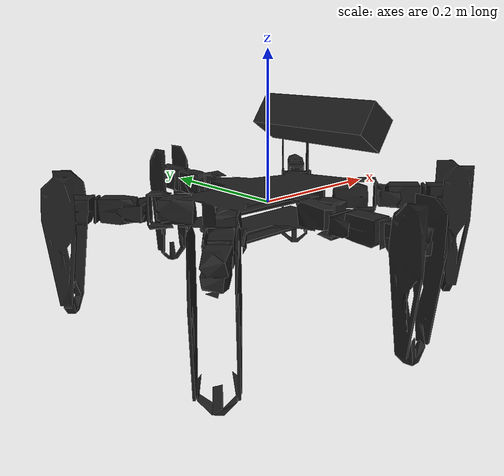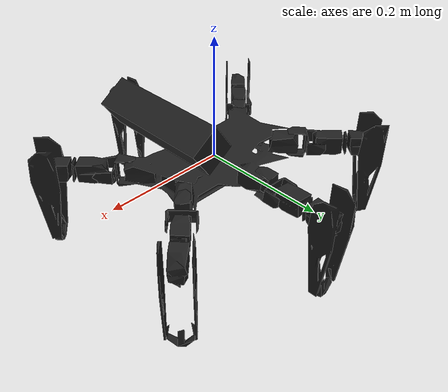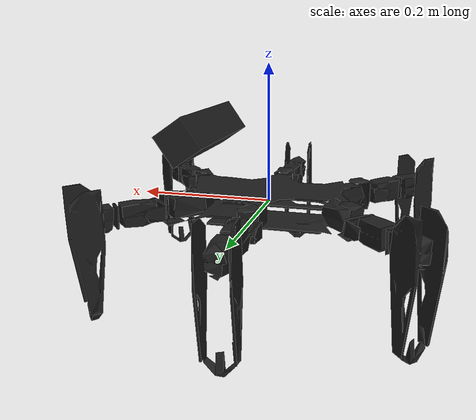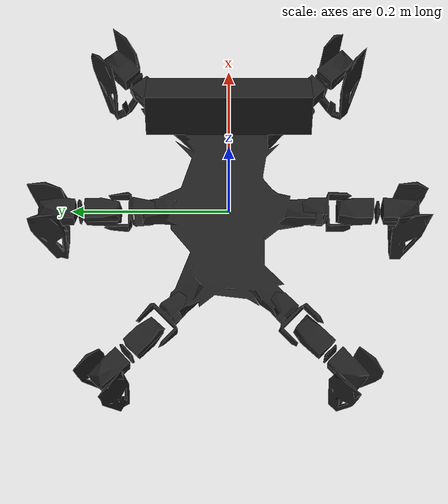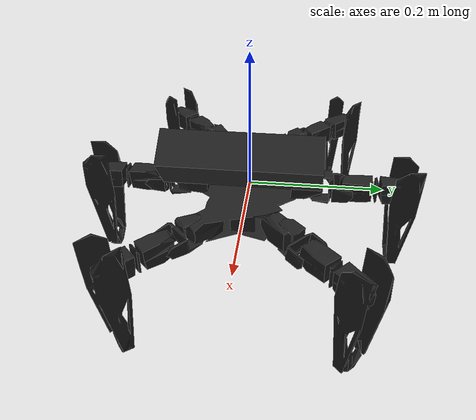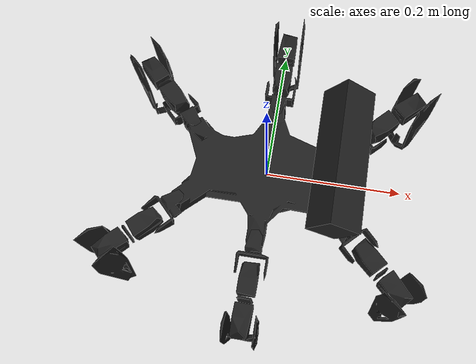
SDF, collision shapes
<sdf version='1.6'>
  <model name='phantomx'>
    <link name='root_link'>
      <pose frame=''>0 0 0 0 -0 0</pose>
      <inertial>
        <pose frame=''>0.009297 0 0.009297 0 -0 0</pose>
        <mass>1.0756</mass>
        <inertia>
          <ixx>3.11009</ixx>
          <ixy>-0.254602</ixy>
          <ixz>2.03091</ixz>
          <iyy>6.38159</iyy>
          <iyz>0.164179</iyz>
          <izz>5.33355</izz>
        </inertia>
      </inertial>
      <collision name='root_link_fixed_joint_lump__base_link_collision'>
        <pose frame=''>0 0 0 0 -0 0</pose>
        <geometry>
          <mesh>
            <scale>1 1 1</scale>
            <uri>model://phantomx_description/meshes/base_link_simple.stl</uri>
          </mesh>
        </geometry>
        <surface>
          <contact>
            <ode/>
          </contact>
          <friction>
            <ode/>
          </friction>
        </surface>
      </collision>
      <collision name='root_link_fixed_joint_lump__kinect_link_collision_1'>
        <pose frame=''>0.1 0 0.1 0 0.6 0</pose>
        <geometry>
          <box>
            <size>0.05 0.2 0.05</size>
          </box>
        </geometry>
        <surface>
          <contact>
            <ode/>
          </contact>
          <friction>
            <ode/>
          </friction>
        </surface>
      </collision>
      <visual name='root_link_fixed_joint_lump__base_link_visual'>
        <pose frame=''>0 0 0 0 -0 0</pose>
        <geometry>
          <mesh>
            <scale>1 1 1</scale>
            <uri>model://phantomx_description/meshes/base_link.stl</uri>
          </mesh>
        </geometry>
        <material>
          <script>
            <name>Gazebo/Black</name>
            <uri>file://media/materials/scripts/gazebo.material</uri>
          </script>
        </material>
      </visual>
      <visual name='root_link_fixed_joint_lump__kinect_link_visual_1'>
        <pose frame=''>0.1 0 0.1 0 0.6 0</pose>
        <geometry>
          <box>
            <size>0.05 0.2 0.05</size>
          </box>
        </geometry>
        <material>
          <script>
            <uri>__default__</uri>
            <name>__default__</name>
          </script>
        </material>
      </visual>
      <velocity_decay/>
      <gravity>1</gravity>
      <velocity_decay/>
      <sensor name='camera_1' type='depth'>
        <always_on>1</always_on>
        <visualize>1</visualize>
        <camera name='__default__'>
          <horizontal_fov>1.047</horizontal_fov>
          <image>
            <width>640</width>
            <height>480</height>
            <format>R8G8B8</format>
          </image>
          <depth_camera>
            <output>depths</output>
          </depth_camera>
          <clip>
            <near>0.1</near>
            <far>100</far>
          </clip>
        </camera>
        <plugin name='camera_controller' filename='libgazebo_ros_openni_kinect.so'>
          <alwaysOn>true</alwaysOn>
          <updateRate>10.0</updateRate>
          <cameraName>kinect</cameraName>
          <frameName>camera_link_optical</frameName>
          <imageTopicName>rgb/image_raw</imageTopicName>
          <depthImageTopicName>depth/image_raw</depthImageTopicName>
          <pointCloudTopicName>depth/points</pointCloudTopicName>
          <cameraInfoTopicName>rgb/camera_info</cameraInfoTopicName>
          <depthImageCameraInfoTopicName>depht/camera_info</depthImageCameraInfoTopicName>
          <pointCloudCutoff>0.4</pointCloudCutoff>
          <hackBaseline>0.07</hackBaseline>
          <distortionK1>0.0</distortionK1>
          <distortionK2>0.0</distortionK2>
          <distortionK3>0.0</distortionK3>
          <distortionT1>0.0</distortionT1>
          <distortionT2>0.0</distortionT2>
          <CxPrime>0.0</CxPrime>
          <Cx>0.0</Cx>
          <Cy>0.0</Cy>
          <focalLength>0.0</focalLength>
        </plugin>
        <pose frame=''>0.1 0 0.1 0 0.6 0</pose>
      </sensor>
    </link>
    <link name='AL_coxa_link'>
      <pose frame=''>0.12 0.06 0 0 -0 0.785398</pose>
      <inertial>
        <pose frame=''>0.024002 0 0 0 -0 0</pose>
        <mass>0.0109641</mass>
        <inertia>
          <ixx>0.01</ixx>
          <ixy>0</ixy>
          <ixz>0</ixz>
          <iyy>0.01</iyy>
          <iyz>0</iyz>
          <izz>0.01</izz>
        </inertia>
      </inertial>
      <collision name='AL_coxa_link_collision'>
        <pose frame=''>0 0 0 0 -0 0</pose>
        <geometry>
          <mesh>
            <scale>1 1 1</scale>
            <uri>model://phantomx_description/meshes/coxa_link_simple.STL</uri>
          </mesh>
        </geometry>
        <surface>
          <contact>
            <ode>
              <kp>100</kp>
              <kd>10</kd>
            </ode>
          </contact>
          <friction>
            <ode>
              <mu>0.8</mu>
              <mu2>0.6</mu2>
            </ode>
          </friction>
        </surface>
      </collision>
      <visual name='AL_coxa_link_visual'>
        <pose frame=''>0 0 0 0 -0 0</pose>
        <geometry>
          <mesh>
            <scale>1 1 1</scale>
            <uri>model://phantomx_description/meshes/coxa_link.STL</uri>
          </mesh>
        </geometry>
        <material>
          <script>
            <name>Gazebo/Black</name>
            <uri>file://media/materials/scripts/gazebo.material</uri>
          </script>
        </material>
      </visual>
      <gravity>1</gravity>
      <velocity_decay/>
      <gravity>1</gravity>
    </link>
    <joint name='AL_coxa_joint' type='revolute'>
      <child>AL_coxa_link</child>
      <parent>root_link</parent>
      <axis>
        <xyz>0 0 1</xyz>
        <limit>
          <lower>-3.14</lower>
          <upper>3.14</upper>
          <effort>1000</effort>
          <velocity>1</velocity>
        </limit>
        <dynamics>
          <damping>1.5</damping>
          <friction>1.5</friction>
          <spring_reference>0</spring_reference>
          <spring_stiffness>0</spring_stiffness>
        </dynamics>
        <use_parent_model_frame>1</use_parent_model_frame>
      </axis>
    </joint>
    <link name='AL_femur_link'>
      <pose frame=''>0.153941 0.093941 0 1.5707 -0 0.785398</pose>
      <inertial>
        <pose frame=''>0.042083 1e-06 -0.000981 0 -0 0</pose>
        <mass>0.121477</mass>
        <inertia>
          <ixx>0.01</ixx>
          <ixy>0</ixy>
          <ixz>0</ixz>
          <iyy>0.01</iyy>
          <iyz>0</iyz>
          <izz>0.01</izz>
        </inertia>
      </inertial>
      <collision name='AL_femur_link_collision'>
        <pose frame=''>0 0 0 0 -0 0</pose>
        <geometry>
          <mesh>
            <scale>1 1 1</scale>
            <uri>model://phantomx_description/meshes/femur_link_simple.STL</uri>
          </mesh>
        </geometry>
        <surface>
          <contact>
            <ode>
              <kp>100</kp>
              <kd>10</kd>
            </ode>
          </contact>
          <friction>
            <ode>
              <mu>0.8</mu>
              <mu2>0.6</mu2>
            </ode>
          </friction>
        </surface>
      </collision>
      <visual name='AL_femur_link_visual'>
        <pose frame=''>0 0 0 0 -0 0</pose>
        <geometry>
          <mesh>
            <scale>1 1 1</scale>
            <uri>model://phantomx_description/meshes/femur_link.STL</uri>
          </mesh>
        </geometry>
        <material>
          <script>
            <name>Gazebo/Black</name>
            <uri>file://media/materials/scripts/gazebo.material</uri>
          </script>
        </material>
      </visual>
      <gravity>1</gravity>
      <velocity_decay/>
      <gravity>1</gravity>
    </link>
    <joint name='AL_femur_joint' type='revolute'>
      <child>AL_femur_link</child>
      <parent>AL_coxa_link</parent>
      <axis>
        <xyz>-0.707107 0.707107 -9.6e-05</xyz>
        <limit>
          <lower>-1.5707</lower>
          <upper>1.5707</upper>
          <effort>1000</effort>
          <velocity>1</velocity>
        </limit>
        <dynamics>
          <damping>1.5</damping>
          <friction>1.5</friction>
          <spring_reference>0</spring_reference>
          <spring_stiffness>0</spring_stiffness>
        </dynamics>
        <use_parent_model_frame>1</use_parent_model_frame>
      </axis>
    </joint>
    <link name='AL_tibia_link'>
      <pose frame=''>0.212631 0.152631 -0 -2e-06 1.5707 -0.7854</pose>
      <inertial>
        <pose frame=''>0.051515 0 0 0 -0 0</pose>
        <mass>0.0374137</mass>
        <inertia>
          <ixx>0.01</ixx>
          <ixy>0</ixy>
          <ixz>0</ixz>
          <iyy>0.01</iyy>
          <iyz>0</iyz>
          <izz>0.01</izz>
        </inertia>
      </inertial>
      <collision name='AL_tibia_link_collision'>
        <pose frame=''>0 0 0 0 -0 0</pose>
        <geometry>
          <mesh>
            <scale>1 1 1</scale>
            <uri>model://phantomx_description/meshes/tibia_link_simple.STL</uri>
          </mesh>
        </geometry>
        <surface>
          <contact>
            <ode>
              <kp>1000</kp>
              <kd>100</kd>
            </ode>
          </contact>
          <friction>
            <ode>
              <mu>0.8</mu>
              <mu2>0.6</mu2>
            </ode>
          </friction>
        </surface>
      </collision>
      <visual name='AL_tibia_link_visual'>
        <pose frame=''>0 0 0 0 -0 0</pose>
        <geometry>
          <mesh>
            <scale>1 1 1</scale>
            <uri>model://phantomx_description/meshes/tibia_link.STL</uri>
          </mesh>
        </geometry>
        <material>
          <script>
            <name>Gazebo/Black</name>
            <uri>file://media/materials/scripts/gazebo.material</uri>
          </script>
        </material>
      </visual>
      <velocity_decay/>
      <gravity>1</gravity>
      <gravity>1</gravity>
      <velocity_decay/>
      <sensor name='AL_foot_contact_sensor' type='contact'>
        <always_on>1</always_on>
        <update_rate>30</update_rate>
        <contact>
          <collision>AL_collision</collision>
          <topic>__default_topic__</topic>
        </contact>
        <plugin name='gripper_bumper' filename='libgazebo_ros_bumper.so'>
          <bumperTopicName>AL_foot_contact_sensor_state</bumperTopicName>
          <frameName>AL_foot</frameName>
        </plugin>
      </sensor>
    </link>
    <joint name='AL_tibia_joint' type='revolute'>
      <child>AL_tibia_link</child>
      <parent>AL_femur_link</parent>
      <axis>
        <xyz>0.707107 -0.707107 9.6e-05</xyz>
        <limit>
          <lower>-2.3562</lower>
          <upper>2.3562</upper>
          <effort>1000</effort>
          <velocity>1</velocity>
        </limit>
        <dynamics>
          <damping>1.5</damping>
          <friction>1.5</friction>
          <spring_reference>0</spring_reference>
          <spring_stiffness>0</spring_stiffness>
        </dynamics>
        <use_parent_model_frame>1</use_parent_model_frame>
      </axis>
    </joint>
    <link name='AR_coxa_link'>
      <pose frame=''>0.12 -0.06 0 0 0 -0.785398</pose>
      <inertial>
        <pose frame=''>0.024002 0 0 0 -0 0</pose>
        <mass>0.0109641</mass>
        <inertia>
          <ixx>0.01</ixx>
          <ixy>0</ixy>
          <ixz>0</ixz>
          <iyy>0.01</iyy>
          <iyz>0</iyz>
          <izz>0.01</izz>
        </inertia>
      </inertial>
      <collision name='AR_coxa_link_collision'>
        <pose frame=''>0 0 0 0 -0 0</pose>
        <geometry>
          <mesh>
            <scale>1 1 1</scale>
            <uri>model://phantomx_description/meshes/coxa_link_simple.STL</uri>
          </mesh>
        </geometry>
        <surface>
          <contact>
            <ode>
              <kp>100</kp>
              <kd>10</kd>
            </ode>
          </contact>
          <friction>
            <ode>
              <mu>0.8</mu>
              <mu2>0.6</mu2>
            </ode>
          </friction>
        </surface>
      </collision>
      <visual name='AR_coxa_link_visual'>
        <pose frame=''>0 0 0 0 -0 0</pose>
        <geometry>
          <mesh>
            <scale>1 1 1</scale>
            <uri>model://phantomx_description/meshes/coxa_link.STL</uri>
          </mesh>
        </geometry>
        <material>
          <script>
            <name>Gazebo/Black</name>
            <uri>file://media/materials/scripts/gazebo.material</uri>
          </script>
        </material>
      </visual>
      <gravity>1</gravity>
      <velocity_decay/>
      <gravity>1</gravity>
    </link>
    <joint name='AR_coxa_joint' type='revolute'>
      <child>AR_coxa_link</child>
      <parent>root_link</parent>
      <axis>
        <xyz>0 0 1</xyz>
        <limit>
          <lower>-3.14</lower>
          <upper>3.14</upper>
          <effort>1000</effort>
          <velocity>1</velocity>
        </limit>
        <dynamics>
          <damping>1.5</damping>
          <friction>1.5</friction>
          <spring_reference>0</spring_reference>
          <spring_stiffness>0</spring_stiffness>
        </dynamics>
        <use_parent_model_frame>1</use_parent_model_frame>
      </axis>
    </joint>
    <link name='AR_femur_link'>
      <pose frame=''>0.153941 -0.093941 0 1.5707 -0 -0.785398</pose>
      <inertial>
        <pose frame=''>0.042083 1e-06 -0.000981 0 -0 0</pose>
        <mass>0.121477</mass>
        <inertia>
          <ixx>0.01</ixx>
          <ixy>0</ixy>
          <ixz>0</ixz>
          <iyy>0.01</iyy>
          <iyz>0</iyz>
          <izz>0.01</izz>
        </inertia>
      </inertial>
      <collision name='AR_femur_link_collision'>
        <pose frame=''>0 0 0 0 -0 0</pose>
        <geometry>
          <mesh>
            <scale>1 1 1</scale>
            <uri>model://phantomx_description/meshes/femur_link_simple.STL</uri>
          </mesh>
        </geometry>
        <surface>
          <contact>
            <ode>
              <kp>100</kp>
              <kd>10</kd>
            </ode>
          </contact>
          <friction>
            <ode>
              <mu>0.8</mu>
              <mu2>0.6</mu2>
            </ode>
          </friction>
        </surface>
      </collision>
      <visual name='AR_femur_link_visual'>
        <pose frame=''>0 0 0 0 -0 0</pose>
        <geometry>
          <mesh>
            <scale>1 1 1</scale>
            <uri>model://phantomx_description/meshes/femur_link.STL</uri>
          </mesh>
        </geometry>
        <material>
          <script>
            <name>Gazebo/Black</name>
            <uri>file://media/materials/scripts/gazebo.material</uri>
          </script>
        </material>
      </visual>
      <gravity>1</gravity>
      <velocity_decay/>
      <gravity>1</gravity>
    </link>
    <joint name='AR_femur_joint' type='revolute'>
      <child>AR_femur_link</child>
      <parent>AR_coxa_link</parent>
      <axis>
        <xyz>-0.707107 -0.707107 9.6e-05</xyz>
        <limit>
          <lower>-1.5707</lower>
          <upper>1.5707</upper>
          <effort>1000</effort>
          <velocity>1</velocity>
        </limit>
        <dynamics>
          <damping>1.5</damping>
          <friction>1.5</friction>
          <spring_reference>0</spring_reference>
          <spring_stiffness>0</spring_stiffness>
        </dynamics>
        <use_parent_model_frame>1</use_parent_model_frame>
      </axis>
    </joint>
    <link name='AR_tibia_link'>
      <pose frame=''>0.212631 -0.152631 0 -2e-06 1.5707 -2.3562</pose>
      <inertial>
        <pose frame=''>0.051515 0 0 0 -0 0</pose>
        <mass>0.0374137</mass>
        <inertia>
          <ixx>0.01</ixx>
          <ixy>0</ixy>
          <ixz>0</ixz>
          <iyy>0.01</iyy>
          <iyz>0</iyz>
          <izz>0.01</izz>
        </inertia>
      </inertial>
      <collision name='AR_tibia_link_collision'>
        <pose frame=''>0 0 0 0 -0 0</pose>
        <geometry>
          <mesh>
            <scale>1 1 1</scale>
            <uri>model://phantomx_description/meshes/tibia_link_simple.STL</uri>
          </mesh>
        </geometry>
        <surface>
          <contact>
            <ode>
              <kp>1000</kp>
              <kd>100</kd>
            </ode>
          </contact>
          <friction>
            <ode>
              <mu>0.8</mu>
              <mu2>0.6</mu2>
            </ode>
          </friction>
        </surface>
      </collision>
      <visual name='AR_tibia_link_visual'>
        <pose frame=''>0 0 0 0 -0 0</pose>
        <geometry>
          <mesh>
            <scale>1 1 1</scale>
            <uri>model://phantomx_description/meshes/tibia_link.STL</uri>
          </mesh>
        </geometry>
        <material>
          <script>
            <name>Gazebo/Black</name>
            <uri>file://media/materials/scripts/gazebo.material</uri>
          </script>
        </material>
      </visual>
      <velocity_decay/>
      <gravity>1</gravity>
      <gravity>1</gravity>
      <velocity_decay/>
      <sensor name='AR_foot_contact_sensor' type='contact'>
        <always_on>1</always_on>
        <update_rate>30</update_rate>
        <contact>
          <collision>AR_collision</collision>
          <topic>__default_topic__</topic>
        </contact>
        <plugin name='gripper_bumper' filename='libgazebo_ros_bumper.so'>
          <bumperTopicName>AR_foot_contact_sensor_state</bumperTopicName>
          <frameName>AR_foot</frameName>
        </plugin>
      </sensor>
    </link>
    <joint name='AR_tibia_joint' type='revolute'>
      <child>AR_tibia_link</child>
      <parent>AR_femur_link</parent>
      <axis>
        <xyz>0.707107 0.707107 -9.6e-05</xyz>
        <limit>
          <lower>-2.3562</lower>
          <upper>2.3562</upper>
          <effort>1000</effort>
          <velocity>1</velocity>
        </limit>
        <dynamics>
          <damping>1.5</damping>
          <friction>1.5</friction>
          <spring_reference>0</spring_reference>
          <spring_stiffness>0</spring_stiffness>
        </dynamics>
        <use_parent_model_frame>1</use_parent_model_frame>
      </axis>
    </joint>
    <link name='BL_coxa_link'>
      <pose frame=''>0 0.1 0 0 -0 1.5708</pose>
      <inertial>
        <pose frame=''>0.024002 0 0 0 -0 0</pose>
        <mass>0.0109641</mass>
        <inertia>
          <ixx>0.01</ixx>
          <ixy>0</ixy>
          <ixz>0</ixz>
          <iyy>0.01</iyy>
          <iyz>0</iyz>
          <izz>0.01</izz>
        </inertia>
      </inertial>
      <collision name='BL_coxa_link_collision'>
        <pose frame=''>0 0 0 0 -0 0</pose>
        <geometry>
          <mesh>
            <scale>1 1 1</scale>
            <uri>model://phantomx_description/meshes/coxa_link_simple.STL</uri>
          </mesh>
        </geometry>
        <surface>
          <contact>
            <ode>
              <kp>100</kp>
              <kd>10</kd>
            </ode>
          </contact>
          <friction>
            <ode>
              <mu>0.8</mu>
              <mu2>0.6</mu2>
            </ode>
          </friction>
        </surface>
      </collision>
      <visual name='BL_coxa_link_visual'>
        <pose frame=''>0 0 0 0 -0 0</pose>
        <geometry>
          <mesh>
            <scale>1 1 1</scale>
            <uri>model://phantomx_description/meshes/coxa_link.STL</uri>
          </mesh>
        </geometry>
        <material>
          <script>
            <name>Gazebo/Black</name>
            <uri>file://media/materials/scripts/gazebo.material</uri>
          </script>
        </material>
      </visual>
      <gravity>1</gravity>
      <velocity_decay/>
      <gravity>1</gravity>
    </link>
    <joint name='BL_coxa_joint' type='revolute'>
      <child>BL_coxa_link</child>
      <parent>root_link</parent>
      <axis>
        <xyz>0 0 1</xyz>
        <limit>
          <lower>-3.14</lower>
          <upper>3.14</upper>
          <effort>1000</effort>
          <velocity>1</velocity>
        </limit>
        <dynamics>
          <damping>1.5</damping>
          <friction>1.5</friction>
          <spring_reference>0</spring_reference>
          <spring_stiffness>0</spring_stiffness>
        </dynamics>
        <use_parent_model_frame>1</use_parent_model_frame>
      </axis>
    </joint>
    <link name='BL_femur_link'>
      <pose frame=''>-0 0.148 0 1.5707 -0 1.5708</pose>
      <inertial>
        <pose frame=''>0.042083 1e-06 -0.000981 0 -0 0</pose>
        <mass>0.121477</mass>
        <inertia>
          <ixx>0.01</ixx>
          <ixy>0</ixy>
          <ixz>0</ixz>
          <iyy>0.01</iyy>
          <iyz>0</iyz>
          <izz>0.01</izz>
        </inertia>
      </inertial>
      <collision name='BL_femur_link_collision'>
        <pose frame=''>0 0 0 0 -0 0</pose>
        <geometry>
          <mesh>
            <scale>1 1 1</scale>
            <uri>model://phantomx_description/meshes/femur_link_simple.STL</uri>
          </mesh>
        </geometry>
        <surface>
          <contact>
            <ode>
              <kp>100</kp>
              <kd>10</kd>
            </ode>
          </contact>
          <friction>
            <ode>
              <mu>0.8</mu>
              <mu2>0.6</mu2>
            </ode>
          </friction>
        </surface>
      </collision>
      <visual name='BL_femur_link_visual'>
        <pose frame=''>0 0 0 0 -0 0</pose>
        <geometry>
          <mesh>
            <scale>1 1 1</scale>
            <uri>model://phantomx_description/meshes/femur_link.STL</uri>
          </mesh>
        </geometry>
        <material>
          <script>
            <name>Gazebo/Black</name>
            <uri>file://media/materials/scripts/gazebo.material</uri>
          </script>
        </material>
      </visual>
      <gravity>1</gravity>
      <velocity_decay/>
      <gravity>1</gravity>
    </link>
    <joint name='BL_femur_joint' type='revolute'>
      <child>BL_femur_link</child>
      <parent>BL_coxa_link</parent>
      <axis>
        <xyz>-1 -0 -9.6e-05</xyz>
        <limit>
          <lower>-1.5707</lower>
          <upper>1.5707</upper>
          <effort>1000</effort>
          <velocity>1</velocity>
        </limit>
        <dynamics>
          <damping>1.5</damping>
          <friction>1.5</friction>
          <spring_reference>0</spring_reference>
          <spring_stiffness>0</spring_stiffness>
        </dynamics>
        <use_parent_model_frame>1</use_parent_model_frame>
      </axis>
    </joint>
    <link name='BL_tibia_link'>
      <pose frame=''>-0 0.231 -0 -2e-06 1.5707 -2e-06</pose>
      <inertial>
        <pose frame=''>0.051515 0 0 0 -0 0</pose>
        <mass>0.0374137</mass>
        <inertia>
          <ixx>0.01</ixx>
          <ixy>0</ixy>
          <ixz>0</ixz>
          <iyy>0.01</iyy>
          <iyz>0</iyz>
          <izz>0.01</izz>
        </inertia>
      </inertial>
      <collision name='BL_tibia_link_collision'>
        <pose frame=''>0 0 0 0 -0 0</pose>
        <geometry>
          <mesh>
            <scale>1 1 1</scale>
            <uri>model://phantomx_description/meshes/tibia_link_simple.STL</uri>
          </mesh>
        </geometry>
        <surface>
          <contact>
            <ode>
              <kp>1000</kp>
              <kd>100</kd>
            </ode>
          </contact>
          <friction>
            <ode>
              <mu>0.8</mu>
              <mu2>0.6</mu2>
            </ode>
          </friction>
        </surface>
      </collision>
      <visual name='BL_tibia_link_visual'>
        <pose frame=''>0 0 0 0 -0 0</pose>
        <geometry>
          <mesh>
            <scale>1 1 1</scale>
            <uri>model://phantomx_description/meshes/tibia_link.STL</uri>
          </mesh>
        </geometry>
        <material>
          <script>
            <name>Gazebo/Black</name>
            <uri>file://media/materials/scripts/gazebo.material</uri>
          </script>
        </material>
      </visual>
      <velocity_decay/>
      <gravity>1</gravity>
      <gravity>1</gravity>
      <velocity_decay/>
      <sensor name='BL_foot_contact_sensor' type='contact'>
        <always_on>1</always_on>
        <update_rate>30</update_rate>
        <contact>
          <collision>BL_collision</collision>
          <topic>__default_topic__</topic>
        </contact>
        <plugin name='gripper_bumper' filename='libgazebo_ros_bumper.so'>
          <bumperTopicName>BL_foot_contact_sensor_state</bumperTopicName>
          <frameName>BL_foot</frameName>
        </plugin>
      </sensor>
    </link>
    <joint name='BL_tibia_joint' type='revolute'>
      <child>BL_tibia_link</child>
      <parent>BL_femur_link</parent>
      <axis>
        <xyz>1 0 9.6e-05</xyz>
        <limit>
          <lower>-2.3562</lower>
          <upper>2.3562</upper>
          <effort>1000</effort>
          <velocity>1</velocity>
        </limit>
        <dynamics>
          <damping>1.5</damping>
          <friction>1.5</friction>
          <spring_reference>0</spring_reference>
          <spring_stiffness>0</spring_stiffness>
        </dynamics>
        <use_parent_model_frame>1</use_parent_model_frame>
      </axis>
    </joint>
    <link name='BR_coxa_link'>
      <pose frame=''>0 -0.1 0 0 0 -1.5708</pose>
      <inertial>
        <pose frame=''>0.024002 0 0 0 -0 0</pose>
        <mass>0.0109641</mass>
        <inertia>
          <ixx>0.01</ixx>
          <ixy>0</ixy>
          <ixz>0</ixz>
          <iyy>0.01</iyy>
          <iyz>0</iyz>
          <izz>0.01</izz>
        </inertia>
      </inertial>
      <collision name='BR_coxa_link_collision'>
        <pose frame=''>0 0 0 0 -0 0</pose>
        <geometry>
          <mesh>
            <scale>1 1 1</scale>
            <uri>model://phantomx_description/meshes/coxa_link_simple.STL</uri>
          </mesh>
        </geometry>
        <surface>
          <contact>
            <ode>
              <kp>100</kp>
              <kd>10</kd>
            </ode>
          </contact>
          <friction>
            <ode>
              <mu>0.8</mu>
              <mu2>0.6</mu2>
            </ode>
          </friction>
        </surface>
      </collision>
      <visual name='BR_coxa_link_visual'>
        <pose frame=''>0 0 0 0 -0 0</pose>
        <geometry>
          <mesh>
            <scale>1 1 1</scale>
            <uri>model://phantomx_description/meshes/coxa_link.STL</uri>
          </mesh>
        </geometry>
        <material>
          <script>
            <name>Gazebo/Black</name>
            <uri>file://media/materials/scripts/gazebo.material</uri>
          </script>
        </material>
      </visual>
      <gravity>1</gravity>
      <velocity_decay/>
      <gravity>1</gravity>
    </link>
    <joint name='BR_coxa_joint' type='revolute'>
      <child>BR_coxa_link</child>
      <parent>root_link</parent>
      <axis>
        <xyz>0 0 1</xyz>
        <limit>
          <lower>-3.14</lower>
          <upper>3.14</upper>
          <effort>1000</effort>
          <velocity>1</velocity>
        </limit>
        <dynamics>
          <damping>1.5</damping>
          <friction>1.5</friction>
          <spring_reference>0</spring_reference>
          <spring_stiffness>0</spring_stiffness>
        </dynamics>
        <use_parent_model_frame>1</use_parent_model_frame>
      </axis>
    </joint>
    <link name='BR_femur_link'>
      <pose frame=''>-0 -0.148 0 1.5707 0 -1.5708</pose>
      <inertial>
        <pose frame=''>0.042083 1e-06 -0.000981 0 -0 0</pose>
        <mass>0.121477</mass>
        <inertia>
          <ixx>0.01</ixx>
          <ixy>0</ixy>
          <ixz>0</ixz>
          <iyy>0.01</iyy>
          <iyz>0</iyz>
          <izz>0.01</izz>
        </inertia>
      </inertial>
      <collision name='BR_femur_link_collision'>
        <pose frame=''>0 0 0 0 -0 0</pose>
        <geometry>
          <mesh>
            <scale>1 1 1</scale>
            <uri>model://phantomx_description/meshes/femur_link_simple.STL</uri>
          </mesh>
        </geometry>
        <surface>
          <contact>
            <ode>
              <kp>100</kp>
              <kd>10</kd>
            </ode>
          </contact>
          <friction>
            <ode>
              <mu>0.8</mu>
              <mu2>0.6</mu2>
            </ode>
          </friction>
        </surface>
      </collision>
      <visual name='BR_femur_link_visual'>
        <pose frame=''>0 0 0 0 -0 0</pose>
        <geometry>
          <mesh>
            <scale>1 1 1</scale>
            <uri>model://phantomx_description/meshes/femur_link.STL</uri>
          </mesh>
        </geometry>
        <material>
          <script>
            <name>Gazebo/Black</name>
            <uri>file://media/materials/scripts/gazebo.material</uri>
          </script>
        </material>
      </visual>
      <gravity>1</gravity>
      <velocity_decay/>
      <gravity>1</gravity>
    </link>
    <joint name='BR_femur_joint' type='revolute'>
      <child>BR_femur_link</child>
      <parent>BR_coxa_link</parent>
      <axis>
        <xyz>-1 0 9.6e-05</xyz>
        <limit>
          <lower>-1.5707</lower>
          <upper>1.5707</upper>
          <effort>1000</effort>
          <velocity>1</velocity>
        </limit>
        <dynamics>
          <damping>1.5</damping>
          <friction>1.5</friction>
          <spring_reference>0</spring_reference>
          <spring_stiffness>0</spring_stiffness>
        </dynamics>
        <use_parent_model_frame>1</use_parent_model_frame>
      </axis>
    </joint>
    <link name='BR_tibia_link'>
      <pose frame=''>-0 -0.231 0 -2e-06 1.5707 3.14159</pose>
      <inertial>
        <pose frame=''>0.051515 0 0 0 -0 0</pose>
        <mass>0.0374137</mass>
        <inertia>
          <ixx>0.01</ixx>
          <ixy>0</ixy>
          <ixz>0</ixz>
          <iyy>0.01</iyy>
          <iyz>0</iyz>
          <izz>0.01</izz>
        </inertia>
      </inertial>
      <collision name='BR_tibia_link_collision'>
        <pose frame=''>0 0 0 0 -0 0</pose>
        <geometry>
          <mesh>
            <scale>1 1 1</scale>
            <uri>model://phantomx_description/meshes/tibia_link_simple.STL</uri>
          </mesh>
        </geometry>
        <surface>
          <contact>
            <ode>
              <kp>1000</kp>
              <kd>100</kd>
            </ode>
          </contact>
          <friction>
            <ode>
              <mu>0.8</mu>
              <mu2>0.6</mu2>
            </ode>
          </friction>
        </surface>
      </collision>
      <visual name='BR_tibia_link_visual'>
        <pose frame=''>0 0 0 0 -0 0</pose>
        <geometry>
          <mesh>
            <scale>1 1 1</scale>
            <uri>model://phantomx_description/meshes/tibia_link.STL</uri>
          </mesh>
        </geometry>
        <material>
          <script>
            <name>Gazebo/Black</name>
            <uri>file://media/materials/scripts/gazebo.material</uri>
          </script>
        </material>
      </visual>
      <velocity_decay/>
      <gravity>1</gravity>
      <gravity>1</gravity>
      <velocity_decay/>
      <sensor name='BR_foot_contact_sensor' type='contact'>
        <always_on>1</always_on>
        <update_rate>30</update_rate>
        <contact>
          <collision>BR_collision</collision>
          <topic>__default_topic__</topic>
        </contact>
        <plugin name='gripper_bumper' filename='libgazebo_ros_bumper.so'>
          <bumperTopicName>BR_foot_contact_sensor_state</bumperTopicName>
          <frameName>BR_foot</frameName>
        </plugin>
      </sensor>
    </link>
    <joint name='BR_tibia_joint' type='revolute'>
      <child>BR_tibia_link</child>
      <parent>BR_femur_link</parent>
      <axis>
        <xyz>1 -0 -9.6e-05</xyz>
        <limit>
          <lower>-2.3562</lower>
          <upper>2.3562</upper>
          <effort>1000</effort>
          <velocity>1</velocity>
        </limit>
        <dynamics>
          <damping>1.5</damping>
          <friction>1.5</friction>
          <spring_reference>0</spring_reference>
          <spring_stiffness>0</spring_stiffness>
        </dynamics>
        <use_parent_model_frame>1</use_parent_model_frame>
      </axis>
    </joint>
    <link name='CL_coxa_link'>
      <pose frame=''>-0.12 0.06 0 0 -0 2.35619</pose>
      <inertial>
        <pose frame=''>0.024002 0 0 0 -0 0</pose>
        <mass>0.0109641</mass>
        <inertia>
          <ixx>0.01</ixx>
          <ixy>0</ixy>
          <ixz>0</ixz>
          <iyy>0.01</iyy>
          <iyz>0</iyz>
          <izz>0.01</izz>
        </inertia>
      </inertial>
      <collision name='CL_coxa_link_collision'>
        <pose frame=''>0 0 0 0 -0 0</pose>
        <geometry>
          <mesh>
            <scale>1 1 1</scale>
            <uri>model://phantomx_description/meshes/coxa_link_simple.STL</uri>
          </mesh>
        </geometry>
        <surface>
          <contact>
            <ode>
              <kp>100</kp>
              <kd>10</kd>
            </ode>
          </contact>
          <friction>
            <ode>
              <mu>0.8</mu>
              <mu2>0.6</mu2>
            </ode>
          </friction>
        </surface>
      </collision>
      <visual name='CL_coxa_link_visual'>
        <pose frame=''>0 0 0 0 -0 0</pose>
        <geometry>
          <mesh>
            <scale>1 1 1</scale>
            <uri>model://phantomx_description/meshes/coxa_link.STL</uri>
          </mesh>
        </geometry>
        <material>
          <script>
            <name>Gazebo/Black</name>
            <uri>file://media/materials/scripts/gazebo.material</uri>
          </script>
        </material>
      </visual>
      <gravity>1</gravity>
      <velocity_decay/>
      <gravity>1</gravity>
    </link>
    <joint name='CL_coxa_joint' type='revolute'>
      <child>CL_coxa_link</child>
      <parent>root_link</parent>
      <axis>
        <xyz>0 0 1</xyz>
        <limit>
          <lower>-3.14</lower>
          <upper>3.14</upper>
          <effort>1000</effort>
          <velocity>1</velocity>
        </limit>
        <dynamics>
          <damping>1.5</damping>
          <friction>1.5</friction>
          <spring_reference>0</spring_reference>
          <spring_stiffness>0</spring_stiffness>
        </dynamics>
        <use_parent_model_frame>1</use_parent_model_frame>
      </axis>
    </joint>
    <link name='CL_femur_link'>
      <pose frame=''>-0.153941 0.093941 0 1.5707 -0 2.35619</pose>
      <inertial>
        <pose frame=''>0.042083 1e-06 -0.000981 0 -0 0</pose>
        <mass>0.121477</mass>
        <inertia>
          <ixx>0.01</ixx>
          <ixy>0</ixy>
          <ixz>0</ixz>
          <iyy>0.01</iyy>
          <iyz>0</iyz>
          <izz>0.01</izz>
        </inertia>
      </inertial>
      <collision name='CL_femur_link_collision'>
        <pose frame=''>0 0 0 0 -0 0</pose>
        <geometry>
          <mesh>
            <scale>1 1 1</scale>
            <uri>model://phantomx_description/meshes/femur_link_simple.STL</uri>
          </mesh>
        </geometry>
        <surface>
          <contact>
            <ode>
              <kp>100</kp>
              <kd>10</kd>
            </ode>
          </contact>
          <friction>
            <ode>
              <mu>0.8</mu>
              <mu2>0.6</mu2>
            </ode>
          </friction>
        </surface>
      </collision>
      <visual name='CL_femur_link_visual'>
        <pose frame=''>0 0 0 0 -0 0</pose>
        <geometry>
          <mesh>
            <scale>1 1 1</scale>
            <uri>model://phantomx_description/meshes/femur_link.STL</uri>
          </mesh>
        </geometry>
        <material>
          <script>
            <name>Gazebo/Black</name>
            <uri>file://media/materials/scripts/gazebo.material</uri>
          </script>
        </material>
      </visual>
      <gravity>1</gravity>
      <velocity_decay/>
      <gravity>1</gravity>
    </link>
    <joint name='CL_femur_joint' type='revolute'>
      <child>CL_femur_link</child>
      <parent>CL_coxa_link</parent>
      <axis>
        <xyz>-0.707107 -0.707107 -9.6e-05</xyz>
        <limit>
          <lower>-1.5707</lower>
          <upper>1.5707</upper>
          <effort>1000</effort>
          <velocity>1</velocity>
        </limit>
        <dynamics>
          <damping>1.5</damping>
          <friction>1.5</friction>
          <spring_reference>0</spring_reference>
          <spring_stiffness>0</spring_stiffness>
        </dynamics>
        <use_parent_model_frame>1</use_parent_model_frame>
      </axis>
    </joint>
    <link name='CL_tibia_link'>
      <pose frame=''>-0.212631 0.152631 0 -2e-06 1.5707 0.785396</pose>
      <inertial>
        <pose frame=''>0.051515 0 0 0 -0 0</pose>
        <mass>0.0374137</mass>
        <inertia>
          <ixx>0.01</ixx>
          <ixy>0</ixy>
          <ixz>0</ixz>
          <iyy>0.01</iyy>
          <iyz>0</iyz>
          <izz>0.01</izz>
        </inertia>
      </inertial>
      <collision name='CL_tibia_link_collision'>
        <pose frame=''>0 0 0 0 -0 0</pose>
        <geometry>
          <mesh>
            <scale>1 1 1</scale>
            <uri>model://phantomx_description/meshes/tibia_link_simple.STL</uri>
          </mesh>
        </geometry>
        <surface>
          <contact>
            <ode>
              <kp>1000</kp>
              <kd>100</kd>
            </ode>
          </contact>
          <friction>
            <ode>
              <mu>0.8</mu>
              <mu2>0.6</mu2>
            </ode>
          </friction>
        </surface>
      </collision>
      <visual name='CL_tibia_link_visual'>
        <pose frame=''>0 0 0 0 -0 0</pose>
        <geometry>
          <mesh>
            <scale>1 1 1</scale>
            <uri>model://phantomx_description/meshes/tibia_link.STL</uri>
          </mesh>
        </geometry>
        <material>
          <script>
            <name>Gazebo/Black</name>
            <uri>file://media/materials/scripts/gazebo.material</uri>
          </script>
        </material>
      </visual>
      <velocity_decay/>
      <gravity>1</gravity>
      <gravity>1</gravity>
      <velocity_decay/>
      <sensor name='CL_foot_contact_sensor' type='contact'>
        <always_on>1</always_on>
        <update_rate>30</update_rate>
        <contact>
          <collision>CL_collision</collision>
          <topic>__default_topic__</topic>
        </contact>
        <plugin name='gripper_bumper' filename='libgazebo_ros_bumper.so'>
          <bumperTopicName>CL_foot_contact_sensor_state</bumperTopicName>
          <frameName>CL_foot</frameName>
        </plugin>
      </sensor>
    </link>
    <joint name='CL_tibia_joint' type='revolute'>
      <child>CL_tibia_link</child>
      <parent>CL_femur_link</parent>
      <axis>
        <xyz>0.707107 0.707107 9.6e-05</xyz>
        <limit>
          <lower>-2.3562</lower>
          <upper>2.3562</upper>
          <effort>1000</effort>
          <velocity>1</velocity>
        </limit>
        <dynamics>
          <damping>1.5</damping>
          <friction>1.5</friction>
          <spring_reference>0</spring_reference>
          <spring_stiffness>0</spring_stiffness>
        </dynamics>
        <use_parent_model_frame>1</use_parent_model_frame>
      </axis>
    </joint>
    <link name='CR_coxa_link'>
      <pose frame=''>-0.12 -0.06 0 0 0 -2.35619</pose>
      <inertial>
        <pose frame=''>0.024002 0 0 0 -0 0</pose>
        <mass>0.0109641</mass>
        <inertia>
          <ixx>0.01</ixx>
          <ixy>0</ixy>
          <ixz>0</ixz>
          <iyy>0.01</iyy>
          <iyz>0</iyz>
          <izz>0.01</izz>
        </inertia>
      </inertial>
      <collision name='CR_coxa_link_collision'>
        <pose frame=''>0 0 0 0 -0 0</pose>
        <geometry>
          <mesh>
            <scale>1 1 1</scale>
            <uri>model://phantomx_description/meshes/coxa_link_simple.STL</uri>
          </mesh>
        </geometry>
        <surface>
          <contact>
            <ode>
              <kp>100</kp>
              <kd>10</kd>
            </ode>
          </contact>
          <friction>
            <ode>
              <mu>0.8</mu>
              <mu2>0.6</mu2>
            </ode>
          </friction>
        </surface>
      </collision>
      <visual name='CR_coxa_link_visual'>
        <pose frame=''>0 0 0 0 -0 0</pose>
        <geometry>
          <mesh>
            <scale>1 1 1</scale>
            <uri>model://phantomx_description/meshes/coxa_link.STL</uri>
          </mesh>
        </geometry>
        <material>
          <script>
            <name>Gazebo/Black</name>
            <uri>file://media/materials/scripts/gazebo.material</uri>
          </script>
        </material>
      </visual>
      <gravity>1</gravity>
      <velocity_decay/>
      <gravity>1</gravity>
    </link>
    <joint name='CR_coxa_joint' type='revolute'>
      <child>CR_coxa_link</child>
      <parent>root_link</parent>
      <axis>
        <xyz>0 0 1</xyz>
        <limit>
          <lower>-3.14</lower>
          <upper>3.14</upper>
          <effort>1000</effort>
          <velocity>1</velocity>
        </limit>
        <dynamics>
          <damping>1.5</damping>
          <friction>1.5</friction>
          <spring_reference>0</spring_reference>
          <spring_stiffness>0</spring_stiffness>
        </dynamics>
        <use_parent_model_frame>1</use_parent_model_frame>
      </axis>
    </joint>
    <link name='CR_femur_link'>
      <pose frame=''>-0.153941 -0.093941 0 1.5707 -0 -2.35619</pose>
      <inertial>
        <pose frame=''>0.042083 1e-06 -0.000981 0 -0 0</pose>
        <mass>0.121477</mass>
        <inertia>
          <ixx>0.01</ixx>
          <ixy>0</ixy>
          <ixz>0</ixz>
          <iyy>0.01</iyy>
          <iyz>0</iyz>
          <izz>0.01</izz>
        </inertia>
      </inertial>
      <collision name='CR_femur_link_collision'>
        <pose frame=''>0 0 0 0 -0 0</pose>
        <geometry>
          <mesh>
            <scale>1 1 1</scale>
            <uri>model://phantomx_description/meshes/femur_link_simple.STL</uri>
          </mesh>
        </geometry>
        <surface>
          <contact>
            <ode>
              <kp>100</kp>
              <kd>10</kd>
            </ode>
          </contact>
          <friction>
            <ode>
              <mu>0.8</mu>
              <mu2>0.6</mu2>
            </ode>
          </friction>
        </surface>
      </collision>
      <visual name='CR_femur_link_visual'>
        <pose frame=''>0 0 0 0 -0 0</pose>
        <geometry>
          <mesh>
            <scale>1 1 1</scale>
            <uri>model://phantomx_description/meshes/femur_link.STL</uri>
          </mesh>
        </geometry>
        <material>
          <script>
            <name>Gazebo/Black</name>
            <uri>file://media/materials/scripts/gazebo.material</uri>
          </script>
        </material>
      </visual>
      <gravity>1</gravity>
      <velocity_decay/>
      <gravity>1</gravity>
    </link>
    <joint name='CR_femur_joint' type='revolute'>
      <child>CR_femur_link</child>
      <parent>CR_coxa_link</parent>
      <axis>
        <xyz>-0.707107 0.707107 9.6e-05</xyz>
        <limit>
          <lower>-1.5707</lower>
          <upper>1.5707</upper>
          <effort>1000</effort>
          <velocity>1</velocity>
        </limit>
        <dynamics>
          <damping>1.5</damping>
          <friction>1.5</friction>
          <spring_reference>0</spring_reference>
          <spring_stiffness>0</spring_stiffness>
        </dynamics>
        <use_parent_model_frame>1</use_parent_model_frame>
      </axis>
    </joint>
    <link name='CR_tibia_link'>
      <pose frame=''>-0.212631 -0.152631 -0 -2e-06 1.5707 2.35619</pose>
      <inertial>
        <pose frame=''>0.051515 0 0 0 -0 0</pose>
        <mass>0.0374137</mass>
        <inertia>
          <ixx>0.01</ixx>
          <ixy>0</ixy>
          <ixz>0</ixz>
          <iyy>0.01</iyy>
          <iyz>0</iyz>
          <izz>0.01</izz>
        </inertia>
      </inertial>
      <collision name='CR_tibia_link_collision'>
        <pose frame=''>0 0 0 0 -0 0</pose>
        <geometry>
          <mesh>
            <scale>1 1 1</scale>
            <uri>model://phantomx_description/meshes/tibia_link_simple.STL</uri>
          </mesh>
        </geometry>
        <surface>
          <contact>
            <ode>
              <kp>1000</kp>
              <kd>100</kd>
            </ode>
          </contact>
          <friction>
            <ode>
              <mu>0.8</mu>
              <mu2>0.6</mu2>
            </ode>
          </friction>
        </surface>
      </collision>
      <visual name='CR_tibia_link_visual'>
        <pose frame=''>0 0 0 0 -0 0</pose>
        <geometry>
          <mesh>
            <scale>1 1 1</scale>
            <uri>model://phantomx_description/meshes/tibia_link.STL</uri>
          </mesh>
        </geometry>
        <material>
          <script>
            <name>Gazebo/Black</name>
            <uri>file://media/materials/scripts/gazebo.material</uri>
          </script>
        </material>
      </visual>
      <velocity_decay/>
      <gravity>1</gravity>
      <gravity>1</gravity>
      <velocity_decay/>
      <sensor name='CR_foot_contact_sensor' type='contact'>
        <always_on>1</always_on>
        <update_rate>30</update_rate>
        <contact>
          <collision>CR_collision</collision>
          <topic>__default_topic__</topic>
        </contact>
        <plugin name='gripper_bumper' filename='libgazebo_ros_bumper.so'>
          <bumperTopicName>CR_foot_contact_sensor_state</bumperTopicName>
          <frameName>CR_foot</frameName>
        </plugin>
      </sensor>
    </link>
    <joint name='CR_tibia_joint' type='revolute'>
      <child>CR_tibia_link</child>
      <parent>CR_femur_link</parent>
      <axis>
        <xyz>0.707107 -0.707107 -9.6e-05</xyz>
        <limit>
          <lower>-2.3562</lower>
          <upper>2.3562</upper>
          <effort>1000</effort>
          <velocity>1</velocity>
        </limit>
        <dynamics>
          <damping>1.5</damping>
          <friction>1.5</friction>
          <spring_reference>0</spring_reference>
          <spring_stiffness>0</spring_stiffness>
        </dynamics>
        <use_parent_model_frame>1</use_parent_model_frame>
      </axis>
    </joint>
    <static>0</static>
    <plugin name='gazebo_ros_control' filename='libgazebo_ros_control.so'>
      <robotSimType>gazebo_ros_control/DefaultRobotHWSim</robotSimType>
    </plugin>
  </model>
</sdf>
